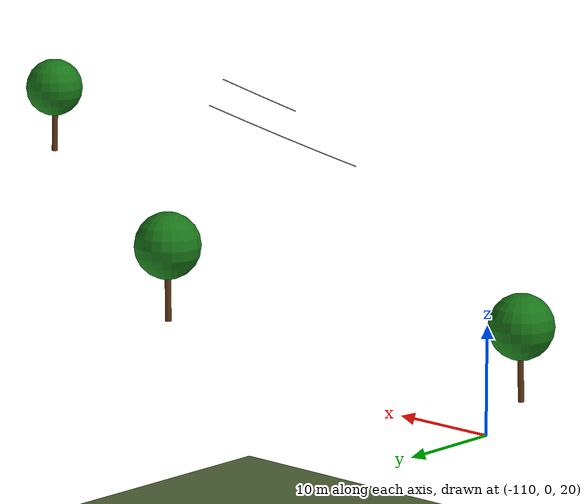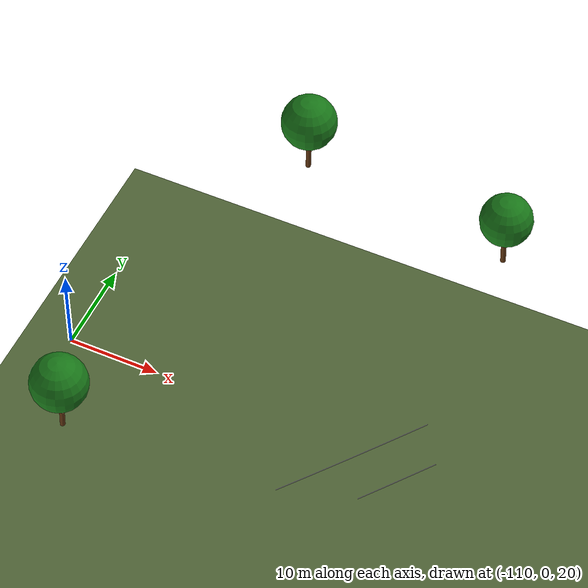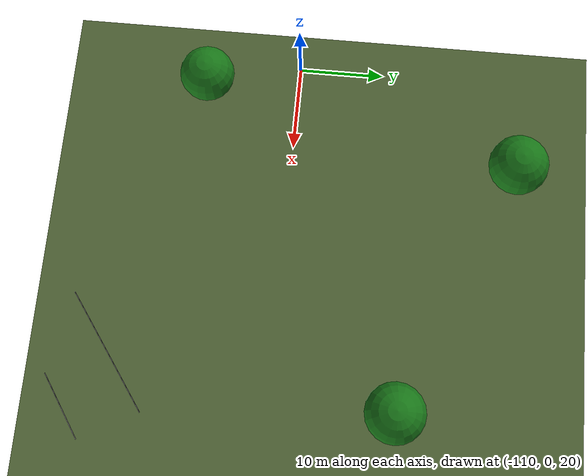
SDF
<sdf version="1.9">
 <world name="power_line_inspection">
  <model name="ground_plane">
   <static>true</static>
   <pose>0 0 -0.01 0 0 0</pose>
   <link name="link">
    <collision name="collision">
     <geometry><plane><normal>0 0 1</normal><size>600 600</size></plane></geometry>
     <surface><friction><ode><mu>1.0</mu><mu2>1.0</mu2></ode></friction></surface>
    </collision>
    <visual name="visual">
     <cast_shadows>false</cast_shadows>
     <geometry><plane><normal>0 0 1</normal><size>600 600</size></plane></geometry>
     <material>
      <ambient>0.28 0.35 0.18 1</ambient>
      <diffuse>0.32 0.40 0.22 1</diffuse>
      <specular>0.02 0.02 0.02 1</specular>
     </material>
    </visual>
   </link>
  </model>
  <model name="wire_L_s17">
   <static>true</static>
   <pose>-67.801 -18.162 41.893 -0.96823 0.80761 -0.44204</pose>
   <link name="link">
    <visual name="v">
     <geometry><cylinder><radius>0.04</radius><length>3.8363</length></cylinder></geometry>
     <material><ambient>0.08 0.08 0.08 1</ambient><diffuse>0.08 0.08 0.08 1</diffuse></material>
    </visual>
    <collision name="c">
     <geometry><cylinder><radius>0.04</radius><length>3.8363</length></cylinder></geometry>
    </collision>
   </link>
  </model>
  <model name="wire_L_s18">
   <static>true</static>
   <pose>-65.028 -15.977 43.417 -0.95473 0.80291 -0.43231</pose>
   <link name="link">
    <visual name="v">
     <geometry><cylinder><radius>0.04</radius><length>3.8537</length></cylinder></geometry>
     <material><ambient>0.08 0.08 0.08 1</ambient><diffuse>0.08 0.08 0.08 1</diffuse></material>
    </visual>
    <collision name="c">
     <geometry><cylinder><radius>0.04</radius><length>3.8537</length></cylinder></geometry>
    </collision>
   </link>
  </model>
  <model name="wire_R_s14">
   <static>true</static>
   <pose>-76.118 -17.716 37.581 -1.01025 0.82140 -0.47261</pose>
   <link name="link">
    <visual name="v">
     <geometry><cylinder><radius>0.04</radius><length>3.7867</length></cylinder></geometry>
     <material><ambient>0.08 0.08 0.08 1</ambient><diffuse>0.08 0.08 0.08 1</diffuse></material>
    </visual>
    <collision name="c">
     <geometry><cylinder><radius>0.04</radius><length>3.7867</length></cylinder></geometry>
    </collision>
   </link>
  </model>
  <model name="wire_R_s15">
   <static>true</static>
   <pose>-73.345 -15.531 38.974 -0.99598 0.81687 -0.46218</pose>
   <link name="link">
    <visual name="v">
     <geometry><cylinder><radius>0.04</radius><length>3.8028</length></cylinder></geometry>
     <material><ambient>0.08 0.08 0.08 1</ambient><diffuse>0.08 0.08 0.08 1</diffuse></material>
    </visual>
    <collision name="c">
     <geometry><cylinder><radius>0.04</radius><length>3.8028</length></cylinder></geometry>
    </collision>
   </link>
  </model>
  <model name="wire_R_s16">
   <static>true</static>
   <pose>-70.573 -13.346 40.412 -0.98198 0.81227 -0.45200</pose>
   <link name="link">
    <visual name="v">
     <geometry><cylinder><radius>0.04</radius><length>3.8194</length></cylinder></geometry>
     <material><ambient>0.08 0.08 0.08 1</ambient><diffuse>0.08 0.08 0.08 1</diffuse></material>
    </visual>
    <collision name="c">
     <geometry><cylinder><radius>0.04</radius><length>3.8194</length></cylinder></geometry>
    </collision>
   </link>
  </model>
  <model name="wire_R_s17">
   <static>true</static>
   <pose>-67.801 -11.162 41.893 -0.96823 0.80761 -0.44204</pose>
   <link name="link">
    <visual name="v">
     <geometry><cylinder><radius>0.04</radius><length>3.8363</length></cylinder></geometry>
     <material><ambient>0.08 0.08 0.08 1</ambient><diffuse>0.08 0.08 0.08 1</diffuse></material>
    </visual>
    <collision name="c">
     <geometry><cylinder><radius>0.04</radius><length>3.8363</length></cylinder></geometry>
    </collision>
   </link>
  </model>
  <model name="tree_03">
   <static>true</static>
   <pose>-67.88 11.75 41.63 0 0 0.02</pose>
   <link name="link">
    <visual name="trunk">
     <pose>0 0 2.236 0.003 -0.033 0</pose>
     <geometry><cylinder><radius>0.258</radius><length>4.473</length></cylinder></geometry>
     <material><ambient>0.32 0.18 0.05 1</ambient><diffuse>0.38 0.21 0.07 1</diffuse></material>
    </visual>
    <collision name="trunk_c">
     <pose>0 0 2.236 0 0 0</pose>
     <geometry><cylinder><radius>0.258</radius><length>4.473</length></cylinder></geometry>
    </collision>
    <visual name="canopy">
     <pose>0 0 5.904 0 0 0</pose>
     <geometry><sphere><radius>2.602</radius></sphere></geometry>
     <material><ambient>0.07 0.38 0.07 1</ambient><diffuse>0.10 0.48 0.10 1</diffuse></material>
    </visual>
    <collision name="canopy_c">
     <pose>0 0 5.904 0 0 0</pose>
     <geometry><sphere><radius>2.602</radius></sphere></geometry>
    </collision>
   </link>
  </model>
  <model name="tree_14">
   <static>true</static>
   <pose>-105.42 -10.17 20.33 0 0 1.64</pose>
   <link name="link">
    <visual name="trunk">
     <pose>0 0 2.643 0.032 -0.011 0</pose>
     <geometry><cylinder><radius>0.275</radius><length>5.286</length></cylinder></geometry>
     <material><ambient>0.32 0.18 0.05 1</ambient><diffuse>0.38 0.21 0.07 1</diffuse></material>
    </visual>
    <collision name="trunk_c">
     <pose>0 0 2.643 0 0 0</pose>
     <geometry><cylinder><radius>0.275</radius><length>5.286</length></cylinder></geometry>
    </collision>
    <visual name="canopy">
     <pose>0 0 6.978 0 0 0</pose>
     <geometry><sphere><radius>3.076</radius></sphere></geometry>
     <material><ambient>0.07 0.38 0.07 1</ambient><diffuse>0.10 0.48 0.10 1</diffuse></material>
    </visual>
    <collision name="canopy_c">
     <pose>0 0 6.978 0 0 0</pose>
     <geometry><sphere><radius>3.076</radius></sphere></geometry>
    </collision>
   </link>
  </model>
  <model name="tree_17">
   <static>true</static>
   <pose>-93.51 23.11 31.80 0 0 5.62</pose>
   <link name="link">
    <visual name="trunk">
     <pose>0 0 2.524 -0.005 0.021 0</pose>
     <geometry><cylinder><radius>0.270</radius><length>5.049</length></cylinder></geometry>
     <material><ambient>0.32 0.18 0.05 1</ambient><diffuse>0.38 0.21 0.07 1</diffuse></material>
    </visual>
    <collision name="trunk_c">
     <pose>0 0 2.524 0 0 0</pose>
     <geometry><cylinder><radius>0.270</radius><length>5.049</length></cylinder></geometry>
    </collision>
    <visual name="canopy">
     <pose>0 0 6.664 0 0 0</pose>
     <geometry><sphere><radius>2.938</radius></sphere></geometry>
     <material><ambient>0.07 0.38 0.07 1</ambient><diffuse>0.10 0.48 0.10 1</diffuse></material>
    </visual>
    <collision name="canopy_c">
     <pose>0 0 6.664 0 0 0</pose>
     <geometry><sphere><radius>2.938</radius></sphere></geometry>
    </collision>
   </link>
  </model>
 </world>
</sdf>
